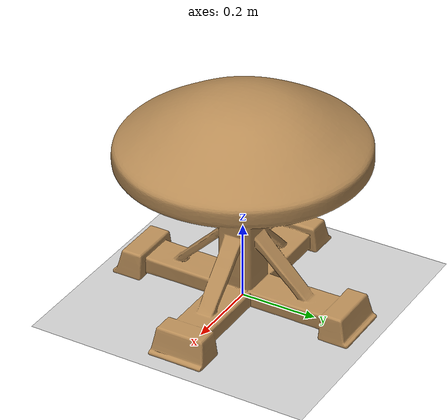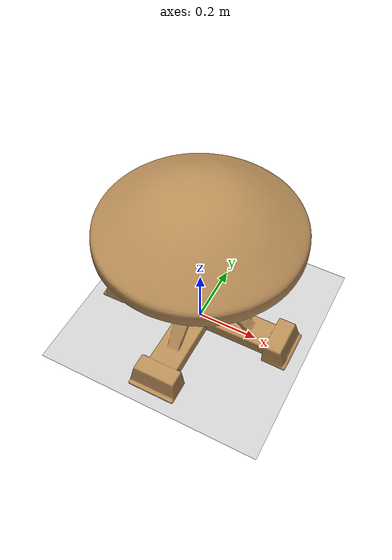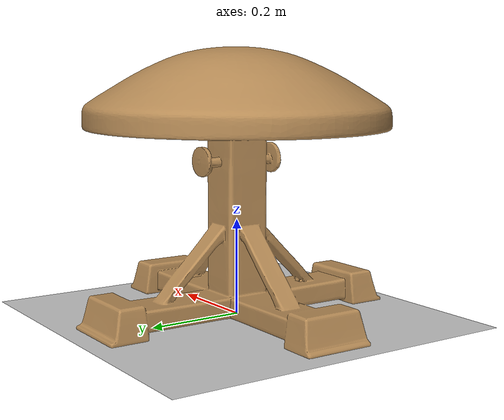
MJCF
<mujoco model="mushroom_mesh_collision">
  <compiler angle="radian" meshdir="." texturedir="." autolimits="true"/>
  <option timestep="0.002" gravity="0 0 -9.81"/>
  <asset>
    <mesh name="mushroom_visual" file="mushroom_visual.obj"/>
    <material name="visual_mat" rgba="0.72 0.55 0.34 1"/>
    <material name="collision_mat" rgba="0.2 0.8 0.2 0.22"/>
  </asset>

  <worldbody>
    <geom name="floor" type="plane" size="2 2 0.05" rgba="0.8 0.8 0.8 1"/>
    <body name="mushroom_body" pos="0 0 0.276493043">
      <inertial pos="0 0 0"
                mass="1"
                diaginertia="0.0619598482 0.0623399405 0.073334187"/>
      <freejoint/>
      <geom name="mushroom_visual_mesh_collision" type="mesh" mesh="mushroom_visual"
            material="visual_mat" friction="0.8 0.02 0.001"/>
    </body>
  </worldbody>
</mujoco>
